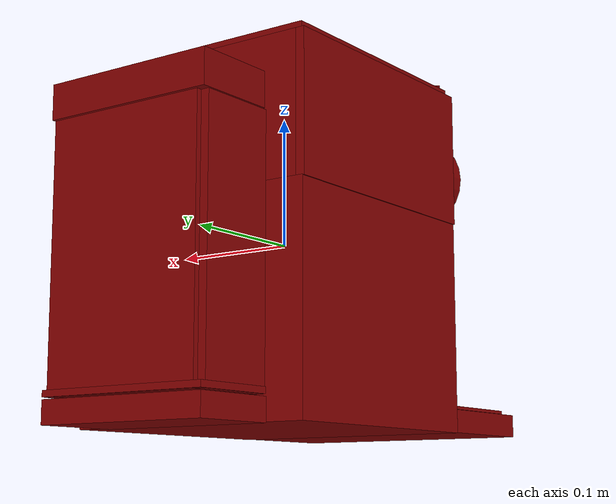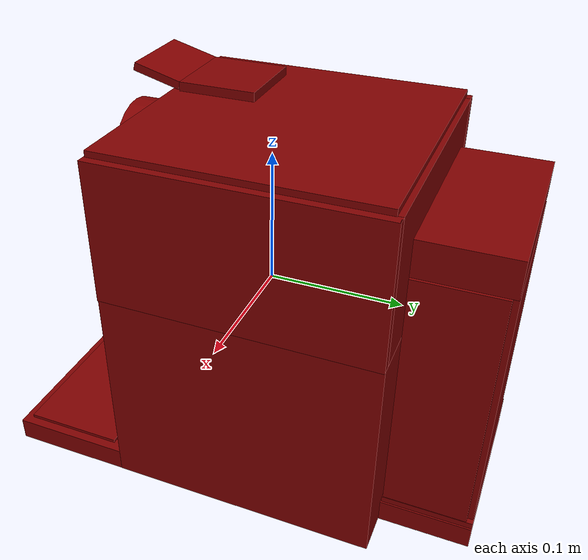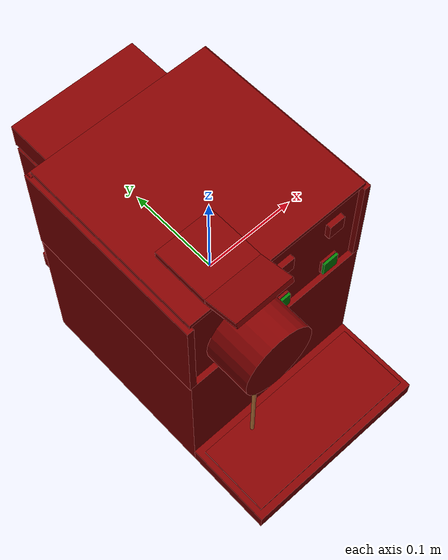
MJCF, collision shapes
<?xml version='1.0' encoding='UTF-8'?>
<mujoco model="model">
  <compiler angle="radian"/>
  <asset>
    <mesh file="visuals/Body001.obj" name="Body001_vis"/>
    <mesh file="visuals/Button001.obj" name="Button001_vis"/>
    <mesh file="visuals/Button002.obj" name="Button002_vis"/>
    <mesh file="visuals/Button003.obj" name="Button003_vis"/>
    <mesh file="visuals/Button004.obj" name="Button004_vis"/>
    <mesh file="visuals/Container001_Clear.obj" name="Container001_Clear_vis"/>
    <mesh file="visuals/Lid001.obj" name="Lid001_vis"/>
    <mesh file="visuals/Lid002.obj" name="Lid002_vis"/>
    <mesh file="visuals/Lid003.obj" name="Lid003_vis"/>
    <texture file="visuals/T_BC001.png" name="Body001_material" type="2d"/>
    <material name="Body001_material" rgba="1 1 1 1.0" texture="Body001_material" shininess="0.4472135901451111" specular="0.3103448502657381"/>
    <texture file="visuals/T_BC001.png" name="Button001_material" type="2d"/>
    <material name="Button001_material" rgba="1 1 1 1.0" texture="Button001_material" shininess="0.4472135901451111" specular="0.3103448502657381"/>
    <texture file="visuals/T_BC001.png" name="Button002_material" type="2d"/>
    <material name="Button002_material" rgba="1 1 1 1.0" texture="Button002_material" shininess="0.4472135901451111" specular="0.3103448502657381"/>
    <texture file="visuals/T_BC001.png" name="Button003_material" type="2d"/>
    <material name="Button003_material" rgba="1 1 1 1.0" texture="Button003_material" shininess="0.4472135901451111" specular="0.3103448502657381"/>
    <texture file="visuals/T_BC001.png" name="Button004_material" type="2d"/>
    <material name="Button004_material" rgba="1 1 1 1.0" texture="Button004_material" shininess="0.4472135901451111" specular="0.3103448502657381"/>
    <texture file="visuals/T_BC001.png" name="Container001_Clear_material" type="2d"/>
    <material name="Container001_Clear_material" rgba="1 1 1 0.08522725850343704" texture="Container001_Clear_material" shininess="0.4472135901451111" specular="0.3103448502657381"/>
    <texture file="visuals/T_BC001.png" name="Lid003_material" type="2d"/>
    <material name="Lid003_material" rgba="1 1 1 1.0" texture="Lid003_material" shininess="0.4472135901451111" specular="0.3103448502657381"/>
    <texture file="visuals/T_BC001.png" name="Lid001_material" type="2d"/>
    <material name="Lid001_material" rgba="1 1 1 1.0" texture="Lid001_material" shininess="0.4472135901451111" specular="0.3103448502657381"/>
    <texture file="visuals/T_BC001.png" name="Lid002_material" type="2d"/>
    <material name="Lid002_material" rgba="1 1 1 1.0" texture="Lid002_material" shininess="0.4472135901451111" specular="0.3103448502657381"/>
  </asset>
  <default>
    <default class="visual">
      <geom conaffinity="0" contype="0" group="1" type="mesh"/>
    </default>
    <default class="collision">
      <geom group="0" rgba="0.5 0 0 0.5"/>
    </default>
    <default class="spawn">
      <geom group="0" rgba="1 1 1 0.5" contype="0" conaffinity="0"/>
      <site group="0" rgba="1 1 1 0.5"/>
    </default>
    <default class="region">
      <geom group="1" conaffinity="0" contype="0" rgba="0 1 0 0"/>
    </default>
  </default>
  <worldbody>
    <body>
      <body name="object">
        <geom class="collision" type="box" pos="0.0023014722391963005 -0.08887161314487457 0.04597444459795952" size="0.008300304412841797 0.0010326285846531391 0.008300304412841797" quat="1.0 0.0 0.0 0.0" name="start_button_1" rgba="0.0 0.5 0 0.5"/>
        <geom class="collision" type="box" pos="0.05928201973438263 -0.08887161314487457 0.046440597623586655" size="0.008300304412841797 0.0010326285846531391 0.008300304412841797" quat="1.0 0.0 0.0 0.0" name="start_button_2" rgba="0.0 0.5 0 0.5"/>
        <site rgba="0 0 0 0" size="0.009999999776482582 0.009999999776482582" pos="-0.0447867214679718 -0.1068628579378128 -0.1122182235121727" name="receptacle_place_site"/>
        <site type="cylinder" rgba="0.8 0.5 0.25 1" size="0.001977270469069481 0.07593875378370285" pos="-0.0447867214679718 -0.1068628579378128 -0.055097322911024094" name="coffee_liquid"/>
        <geom mesh="Body001_vis" type="mesh" solimp="0.998 0.998 0.001" solref="0.001 1" density="100" friction="0.95 0.3 0.1" class="visual" material="Body001_material"/>
        <geom class="collision" type="box" pos="4.882787185306112e-18 0.013790412805974483 -0.061125073581933975" size="0.10008688271045685 0.10008688271045685 0.08089204132556915" quat="1.0 0.0 0.0 0.0"/>
        <geom class="collision" type="box" pos="-1.1089720959284048e-17 -0.1318216621875763 -0.13305886089801788" size="0.10008585453033447 0.045906733721494675 0.008728821761906147" quat="1.0 0.0 0.0 0.0"/>
        <geom class="collision" type="box" pos="-0.00031712139025330544 0.146804079413414 -0.13405242562294006" size="0.0702059268951416 0.0330178439617157 0.008667407557368279" quat="1.0 0.0 0.0 0.0"/>
        <geom class="collision" type="box" pos="-0.09768059849739075 0.013790412805974483 0.07078438252210617" size="0.003488542279228568 0.10008585453033447 0.05157922953367233" quat="1.0 0.0 0.0 0.0"/>
        <geom class="collision" type="box" pos="0.09741516411304474 0.013790412805974483 0.07078438252210617" size="0.003488542279228568 0.10008585453033447 0.05157922953367233" quat="1.0 0.0 0.0 0.0"/>
        <geom class="collision" type="box" pos="0.0007963106036186218 0.11079216748476028 0.07078438252210617" size="0.10008585453033447 0.003075146581977606 0.05157922953367233" quat="1.0 0.0 0.0 0.0"/>
        <geom class="collision" type="box" pos="0.0007963106036186218 -0.07727070152759552 0.07078438252210617" size="0.10008585453033447 0.0034885494969785213 0.05157922953367233" quat="1.0 0.0 0.0 0.0"/>
        <geom class="collision" type="cylinder" pos="-0.045015737414360046 -0.10933660715818405 0.06720112264156342" size="0.036918606609106064 0.02303718402981758" quat="0.7071068286895752 0.7071067690849304 -1.5700924318127872e-16 -5.9269340452702814e-24"/>
        <geom class="collision" type="cylinder" pos="-0.045015737414360046 -0.10694818943738937 0.025000233203172684" size="0.0059601073153316975 0.006257383152842522" quat="7.549790126404332e-08 1.0 -2.220446049250313e-16 -1.7645063234279917e-24"/>
        <body name="Button001">
          <joint axis="0.0 1.0 0.0" pos="0.0023014722391963005 -0.08683280646800995 0.10555990785360336" limited="true" name="Button001_joint" range="0.0 0.002" type="slide" damping="1" frictionloss="1" armature=".01" stiffness="0.05"/>
          <geom mesh="Button001_vis" type="mesh" solimp="0.998 0.998 0.001" solref="0.001 1" density="100" friction="0.95 0.3 0.1" class="visual" material="Button001_material"/>
          <geom class="collision" type="box" pos="0.0023014722391963005 -0.08740539103746414 0.10555990785360336" size="0.008300304412841797 0.0025703059509396553 0.008300304412841797" quat="1.0 0.0 0.0 0.0"/>
        </body>
        <body name="Button002">
          <joint axis="0.0 1.0 0.0" pos="0.0023014722391963005 -0.08683280646800995 0.04597444459795952" limited="true" name="Button002_joint" range="0.0 0.002" type="slide" damping="1" frictionloss="1" armature=".01" stiffness="0.05"/>
          <geom mesh="Button002_vis" type="mesh" solimp="0.998 0.998 0.001" solref="0.001 1" density="100" friction="0.95 0.3 0.1" class="visual" material="Button002_material"/>
          <geom class="collision" type="box" pos="0.0023014722391963005 -0.08586771786212921 0.04597444459795952" size="0.008300304412841797 0.0010326285846531391 0.008300304412841797" quat="1.0 0.0 0.0 0.0"/>
        </body>
        <body name="Button003">
          <joint axis="0.0 1.0 0.0" pos="0.05928201973438263 -0.08683280646800995 0.046440597623586655" limited="true" name="Button003_joint" range="0.0 0.002" type="slide" damping="1" frictionloss="1" armature=".01" stiffness="0.05"/>
          <geom mesh="Button003_vis" type="mesh" solimp="0.998 0.998 0.001" solref="0.001 1" density="100" friction="0.95 0.3 0.1" class="visual" material="Button003_material"/>
          <geom class="collision" type="box" pos="0.05928201973438263 -0.08586771786212921 0.046440597623586655" size="0.008300304412841797 0.0010326285846531391 0.008300304412841797" quat="1.0 0.0 0.0 0.0"/>
        </body>
        <body name="Button004">
          <joint axis="0.0 1.0 0.0" pos="0.05985260009765625 -0.08683280646800995 0.10551892220973969" limited="true" name="Button004_joint" range="0.0 0.002" type="slide" damping="1" frictionloss="1" armature=".01" stiffness="0.05"/>
          <geom mesh="Button004_vis" type="mesh" solimp="0.998 0.998 0.001" solref="0.001 1" density="100" friction="0.95 0.3 0.1" class="visual" material="Button004_material"/>
          <geom class="collision" type="box" pos="0.05985260009765625 -0.08740539103746414 0.10551892220973969" size="0.008300304412841797 0.0025703059509396553 0.008300304412841797" quat="1.0 0.0 0.0 0.0"/>
        </body>
        <body name="Container001_Clear">
          <joint axis="0.0 0.0 1.0" pos="2.980229396598588e-10 0.14678798615932465 -0.031096165999770164" limited="true" name="Container001_Clear_joint" range="0.0 0.1" type="slide" damping="1" frictionloss="1" armature=".01" stiffness="0.05"/>
          <geom mesh="Container001_Clear_vis" type="mesh" solimp="0.998 0.998 0.001" solref="0.001 1" density="100" friction="0.95 0.3 0.1" class="visual" material="Container001_Clear_material"/>
          <geom class="collision" type="box" pos="0.06621094048023224 0.14533287286758423 -0.02769089676439762" size="0.003281337907537818 0.03006349876523018 0.09629078209400177" quat="1.0 0.0 0.0 0.0"/>
          <geom class="collision" type="box" pos="-0.06711609661579132 0.14533287286758423 -0.02769089676439762" size="0.003281337907537818 0.03006349876523018 0.09629078209400177" quat="1.0 0.0 0.0 0.0"/>
          <geom class="collision" type="box" pos="0.0008054756326600909 0.17619913816452026 -0.02769089676439762" size="0.06483401358127594 0.003281342564150691 0.09629052132368088" quat="1.0 0.0 0.0 0.0"/>
          <geom class="collision" type="box" pos="-0.0002569332718849182 0.1161046102643013 -0.02769089676439762" size="0.06531772762537003 0.001457463251426816 0.09629078209400177" quat="1.0 0.0 0.0 0.0"/>
          <geom class="collision" type="box" pos="-0.00031712139025330544 0.147213876247406 -0.12145890295505524" size="0.0702059268951416 0.03260790929198265 0.0023581520654261112" quat="1.0 0.0 0.0 0.0"/>
          <body name="Lid003">
            <joint axis="0.0 0.0 1.0" pos="6.375278083226021e-09 0.14678798615932465 0.08263865113258362" limited="true" name="Lid003_joint" range="0.0 0.1" type="slide" damping="1" frictionloss="1" armature=".01" stiffness="0.05"/>
            <geom mesh="Lid003_vis" type="mesh" solimp="0.998 0.998 0.001" solref="0.001 1" density="100" friction="0.95 0.3 0.1" class="visual" material="Lid003_material"/>
            <geom class="collision" type="box" pos="-5.875591607650734e-17 0.14727617800235748 0.08293814957141876" size="0.0693642869591713 0.031903162598609924 0.013005714863538742" quat="1.0 0.0 0.0 0.0"/>
          </body>
        </body>
        <body name="Lid001">
          <joint axis="0.0 0.0 1.0" pos="3.993511299427155e-09 -0.1324775665998459 -0.12292581796646118" limited="true" name="Lid001_joint" range="0.0 0.1" type="slide" damping="1" frictionloss="1" armature=".01" stiffness="0.05"/>
          <geom mesh="Lid001_vis" type="mesh" solimp="0.998 0.998 0.001" solref="0.001 1" density="100" friction="0.95 0.3 0.1" class="visual" material="Lid001_material"/>
          <geom class="collision" type="box" pos="-1.1075371030017479e-17 -0.1325971633195877 -0.12209959328174591" size="0.09397474676370621 0.03802613541483879 0.001194323762319982" quat="1.0 0.0 0.0 0.0"/>
        </body>
        <body name="Lid002">
          <joint axis="-1.0 0.0 0.0" pos="-3.613531696089467e-09 0.11044695973396301 0.12317078560590744" limited="true" name="Lid002_joint" range="0.0 1.5707963267948966" type="hinge" damping="1" frictionloss="1" armature=".01" stiffness="0.05"/>
          <geom mesh="Lid002_vis" type="mesh" solimp="0.998 0.998 0.001" solref="0.001 1" density="100" friction="0.95 0.3 0.1" class="visual" material="Lid002_material"/>
          <geom class="collision" type="box" pos="-5.1300338692219886e-17 0.013338963501155376 0.12568268179893494" size="0.09676413983106613 0.09718197584152222 0.0022215046919882298" quat="1.0 0.0 0.0 0.0"/>
          <geom class="collision" type="box" pos="-0.045348159968853 -0.04886287450790405 0.13100895285606384" size="0.029819726943969727 0.028848541900515556 0.003581394674256444" quat="1.0 0.0 0.0 0.0"/>
          <geom class="collision" type="box" pos="-0.045348159968853 -0.0955483689904213 0.13635994493961334" size="0.029819726943969727 0.018413500860333443 0.002973356284201145" quat="0.9914448261260986 -0.1305263340473175 2.898265504095948e-17 -1.1035940224760099e-24"/>
        </body>
        <geom class="region" name="reg_main" type="box" pos="1.862645149230957e-09 0.0 0.0" size="0.10287211835384369 0.17996466159820557 0.14299067854881287"/>
      </body>
    </body>
  </worldbody>
  <actuator>
    <motor name="Button001_joint_actuator" joint="Button001_joint" gear="0.1"/>
    <motor name="Button002_joint_actuator" joint="Button002_joint" gear="0.1"/>
    <motor name="Button003_joint_actuator" joint="Button003_joint" gear="0.1"/>
    <motor name="Button004_joint_actuator" joint="Button004_joint" gear="0.1"/>
    <motor name="Container001_Clear_joint_actuator" joint="Container001_Clear_joint" gear="12"/>
    <motor name="Lid001_joint_actuator" joint="Lid001_joint" gear="5"/>
    <motor name="Lid002_joint_actuator" joint="Lid002_joint" gear="5"/>
    <motor name="Lid003_joint_actuator" joint="Lid003_joint" gear="10"/>
  </actuator>
</mujoco>
